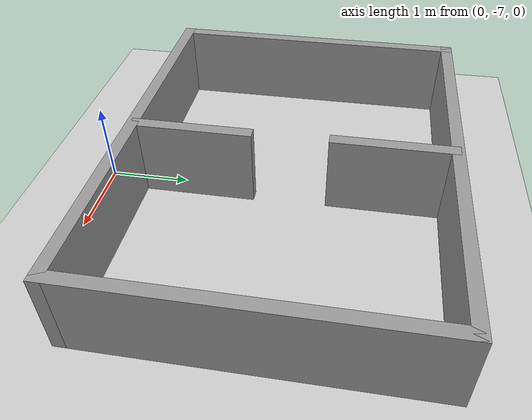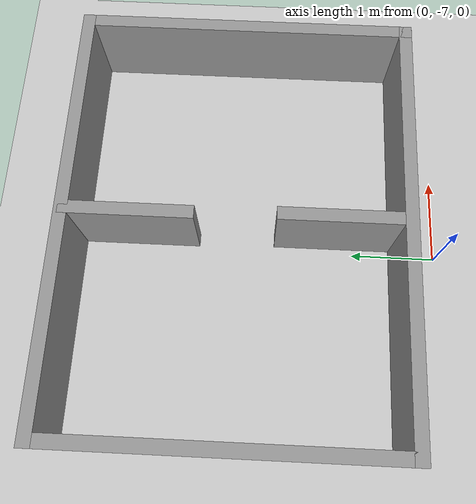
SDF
<sdf version="1.6">
 <world name="default">
  <light name="sun" type="directional">
   <pose>0 0 10 0 -0 0</pose>
   <diffuse>0.8 0.8 0.8 1</diffuse>
   <specular>0.2 0.2 0.2 1</specular>
   <attenuation>
    <range>1000</range>
    <constant>0.9</constant>
    <linear>0.01</linear>
    <quadratic>0.001</quadratic>
   </attenuation>
   <direction>-0.5 0.1 -0.9</direction>
  </light>
  <model name="ground_plane">
   <static>1</static>
   <link name="link">
    <collision name="collision">
     <geometry><plane><normal>0 0 1</normal><size>100 100</size></plane></geometry>
     <surface>
      <contact><collide_bitmask>65535</collide_bitmask></contact>
      <friction><ode><mu>100</mu><mu2>50</mu2></ode></friction>
     </surface>
    </collision>
    <visual name="visual">
     <cast_shadows>0</cast_shadows>
     <geometry><plane><normal>0 0 1</normal><size>100 100</size></plane></geometry>
     <material>
      <script><uri>file://media/materials/scripts/gazebo.material</uri><name>Gazebo/Grey</name></script>
     </material>
    </visual>
   </link>
  </model>
  <gravity>0 0 -9.8</gravity>
  <magnetic_field>6e-06 2.3e-05 -4.2e-05</magnetic_field>
  <atmosphere type="adiabatic"/>
  <physics name="default_physics" default="0" type="ode">
   <max_step_size>0.001</max_step_size>
   <real_time_factor>1</real_time_factor>
   <real_time_update_rate>1000</real_time_update_rate>
  </physics>
  <scene><ambient>0.4 0.4 0.4 1</ambient><background>0.7 0.7 0.7 1</background><shadows>1</shadows></scene>
  <audio><device>default</device></audio>
  <spherical_coordinates>
   <surface_model>EARTH_WGS84</surface_model>
   <latitude_deg>0</latitude_deg>
   <longitude_deg>0</longitude_deg>
   <elevation>0</elevation>
   <heading_deg>0</heading_deg>
  </spherical_coordinates>
  <model name="labirent">
   <pose>0.129863 -4.60034 0 0 -0 0</pose>
   <link name="Wall_11">
    <collision name="Wall_11_Collision">
     <geometry><box><size>5.023 0.15 1</size></box></geometry>
     <pose>0 0 0.5 0 -0 0</pose>
    </collision>
    <visual name="Wall_11_Visual">
     <pose>0 0 0.5 0 -0 0</pose>
     <geometry><box><size>5.023 0.15 1</size></box></geometry>
     <material>
      <script><uri>file://media/materials/scripts/gazebo.material</uri><name>Gazebo/Grey</name></script>
      <ambient>1 1 1 1</ambient>
     </material>
     <meta><layer>0</layer></meta>
    </visual>
    <pose>0 1.925 0 0 -0 0</pose>
   </link>
   <link name="Wall_12">
    <collision name="Wall_12_Collision">
     <geometry><box><size>4 0.15 1</size></box></geometry>
     <pose>0 0 0.5 0 -0 0</pose>
    </collision>
    <visual name="Wall_12_Visual">
     <pose>0 0 0.5 0 -0 0</pose>
     <geometry><box><size>4 0.15 1</size></box></geometry>
     <material>
      <script><uri>file://media/materials/scripts/gazebo.material</uri><name>Gazebo/Grey</name></script>
      <ambient>1 1 1 1</ambient>
     </material>
     <meta><layer>0</layer></meta>
    </visual>
    <pose>2.4365 0 0 0 -0 -1.5708</pose>
   </link>
   <link name="Wall_13">
    <collision name="Wall_13_Collision">
     <geometry><box><size>5.023 0.15 1</size></box></geometry>
     <pose>0 0 0.5 0 -0 0</pose>
    </collision>
    <visual name="Wall_13_Visual">
     <pose>0 0 0.5 0 -0 0</pose>
     <geometry><box><size>5.023 0.15 1</size></box></geometry>
     <material>
      <script><uri>file://media/materials/scripts/gazebo.material</uri><name>Gazebo/Grey</name></script>
      <ambient>1 1 1 1</ambient>
     </material>
     <meta><layer>0</layer></meta>
    </visual>
    <pose>0 -1.925 0 0 -0 3.14159</pose>
   </link>
   <link name="Wall_14">
    <collision name="Wall_14_Collision">
     <geometry><box><size>4 0.15 1</size></box></geometry>
     <pose>0 0 0.5 0 -0 0</pose>
    </collision>
    <visual name="Wall_14_Visual">
     <pose>0 0 0.5 0 -0 0</pose>
     <geometry><box><size>4 0.15 1</size></box></geometry>
     <material>
      <script><uri>file://media/materials/scripts/gazebo.material</uri><name>Gazebo/Grey</name></script>
      <ambient>1 1 1 1</ambient>
     </material>
     <meta><layer>0</layer></meta>
    </visual>
    <pose>-2.4365 0 0 0 -0 1.5708</pose>
   </link>
   <link name="Wall_16">
    <collision name="Wall_16_Collision">
     <geometry><box><size>1.5 0.15 1</size></box></geometry>
     <pose>0 0 0.5 0 -0 0</pose>
    </collision>
    <visual name="Wall_16_Visual">
     <pose>0 0 0.5 0 -0 0</pose>
     <geometry><box><size>1.5 0.15 1</size></box></geometry>
     <material>
      <script><uri>file://media/materials/scripts/gazebo.material</uri><name>Gazebo/Grey</name></script>
      <ambient>1 1 1 1</ambient>
     </material>
     <meta><layer>0</layer></meta>
    </visual>
    <pose>-0.0065 1.21 0 0 -0 -1.5708</pose>
   </link>
   <link name="Wall_19">
    <collision name="Wall_19_Collision">
     <geometry><box><size>1.5 0.15 1</size></box></geometry>
     <pose>0 0 0.5 0 -0 0</pose>
    </collision>
    <visual name="Wall_19_Visual">
     <pose>0 0 0.5 0 -0 0</pose>
     <geometry><box><size>1.5 0.15 1</size></box></geometry>
     <material>
      <script><uri>file://media/materials/scripts/gazebo.material</uri><name>Gazebo/Grey</name></script>
      <ambient>1 1 1 1</ambient>
     </material>
     <meta><layer>0</layer></meta>
    </visual>
    <pose>0.0255 -1.2 0 0 -0 1.5708</pose>
   </link>
   <static>1</static>
  </model>
 </world>
</sdf>
